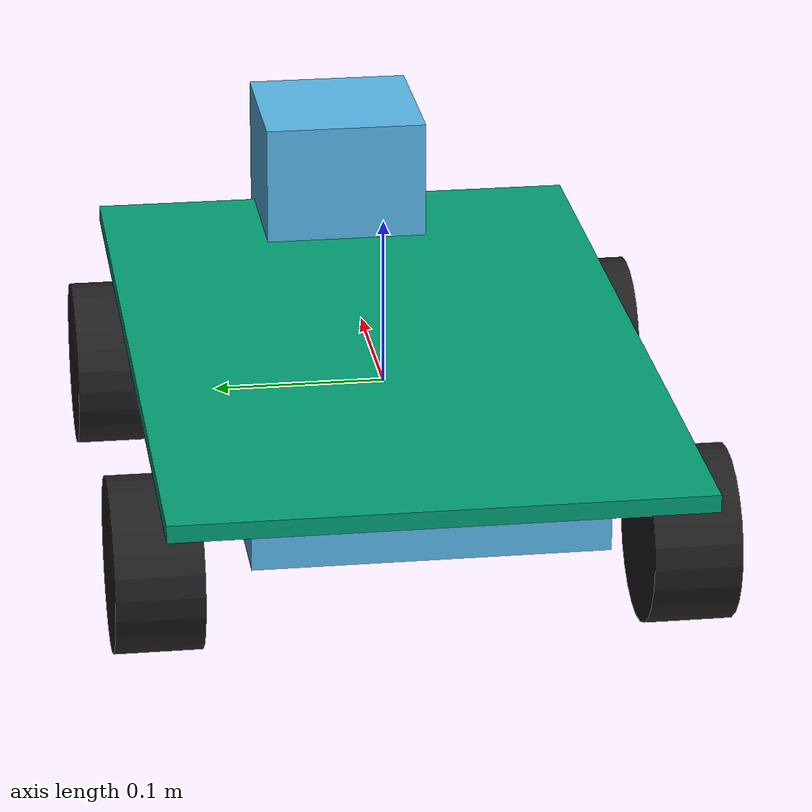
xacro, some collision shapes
<?xml version='1.0'?>

<robot name="slam_bot" xmlns:xacro="http://www.ros.org/wiki/xacro">
<xacro:include filename="$(find RoboND-SLAM-Project)/urdf/slam_bot.gazebo" />
  <link name="robot_footprint"></link>

  <joint name="robot_footprint_joint" type="fixed">
    <origin xyz="0 0 0" rpy="0 0 0" />
    <parent link="robot_footprint"/>
    <child link="chassis" />
  </joint>

  <link name='chassis'>
    <pose>0 0 0.1 0 0 0</pose>

    <inertial>
      <mass value="15.0"/>
      <origin xyz="0.0 0 0" rpy=" 0 0 0"/>
      <inertia ixx="0.1" ixy="0" ixz="0" iyy="0.1" iyz="0" izz="0.1" />
    </inertial>

    <collision name='collision'>
      <origin xyz="0 0 0" rpy=" 0 0 0"/>
      <geometry>
        <box size=".4 .2 .05"/>
      </geometry>
    </collision>

    <visual>
      <origin xyz="0 0 0" rpy=" 0 0 0"/>
      <geometry>
        <box size=".4 .2 .05"/>
      </geometry>
    </visual>

  </link>

  <link name='FlatBed'>

    <inertial>
      <mass value="5.0"/>
      <origin xyz="0.0 0 0" rpy=" 0 0 0"/>
      <inertia ixx="0.1" ixy="0" ixz="0" iyy="0.1" iyz="0" izz="0.1"/>
    </inertial>

    <collision name='FlatBed_collision'>
      <origin xyz="0 0 0" rpy=" 0 0 0"/>
      <geometry>
        <box size=".5 .3 .01"/>
      </geometry>
    </collision>

    <visual>
      <origin xyz="0 0 0" rpy=" 0 0 0"/>
      <geometry>
        <box size=".5 .3 .01"/>
      </geometry>
    </visual>

  </link>

  <joint type="fixed" name="flatbed_joint">
    <origin xyz="0 0 0.022" rpy="0 0 0"/>
    <child link="FlatBed"/>
    <parent link="chassis"/>
  </joint>

  <link name='Left_front_wheel'>

    <inertial>
      <mass value="5.0"/>
      <origin xyz="0 0 0" rpy="0 0 0"/>
      <inertia ixx="0.1" ixy="0" ixz="0" iyy="0.1" iyz="0" izz="0.1"/>
    </inertial>

    <collision name='collision'>
      <origin xyz="0 0 0" rpy="0 1.5707 1.5707"/>
      <geometry>
        <cylinder length="0.05" radius="0.05"/>
      </geometry>
    </collision>

    <visual>
      <origin xyz="0 0 0" rpy="0 1.5707 1.5707"/>
      <geometry>
        <cylinder length="0.05" radius="0.05"/>
      </geometry>
    </visual>

  </link>

  <joint type="continuous" name="left_front_wheel_hinge">
    <origin xyz="0.15 0.15 -0.04" rpy="0 0 0"/>
    <child link="Left_front_wheel"/>
    <parent link="chassis"/>
    <axis xyz="0 1 0" rpy="0 0 0"/>
    <limit effort="10000" velocity="1000"/>
    <joint_properties damping="1.0" friction="0.02"/>
  </joint>

  <link name='Left_back_wheel'>

    <inertial>
      <mass value="5.0"/>
      <origin xyz="0 0 0" rpy="0 0 0"/>
      <inertia ixx="0.1" ixy="0" ixz="0" iyy="0.1" iyz="0" izz="0.1"/>
    </inertial>

    <collision name='collision'>
      <origin xyz="0 0 0" rpy="0 1.5707 1.5707"/>
      <geometry>
        <cylinder length="0.05" radius="0.05"/>
      </geometry>
    </collision>

    <visual>
      <origin xyz="0 0 0" rpy="0 1.5707 1.5707"/>
      <geometry>
        <cylinder length="0.05" radius="0.05"/>
      </geometry>
    </visual>

  </link>

  <joint type="continuous" name="left_back_wheel_hinge">
    <origin xyz="-0.15 0.15 -0.04" rpy="0 0 0"/>
    <child link="Left_back_wheel"/>
    <parent link="chassis"/>
    <axis xyz="0 1 0" rpy="0 0 0"/>
    <limit effort="10000" velocity="1000"/>
    <joint_properties damping="1.0" friction="0.02"/>
  </joint>

  <link name='Right_front_wheel'>

    <inertial>
      <mass value="5.0"/>
      <origin xyz="0 0 0" rpy="0 0 0"/>
      <inertia ixx="0.1" ixy="0" ixz="0" iyy="0.1" iyz="0" izz="0.1"/>
    </inertial>

    <collision name='collision'>
      <origin xyz="0 0 0" rpy=" 0 1.5707 1.5707"/>
      <geometry>
        <cylinder length="0.05" radius="0.05"/>
      </geometry>
    </collision>

    <visual>
      <origin xyz="0 0 0" rpy=" 0 1.5707 1.5707"/>
      <geometry>
        <cylinder length="0.05" radius="0.05"/>
      </geometry>
    </visual>

  </link>

  <joint type="continuous" name="right_front_wheel_hinge">
    <origin xyz="0.15 -0.15 -0.04" rpy="0 0 0"/>
    <child link="Right_front_wheel"/>
    <parent link="chassis"/>
    <axis xyz="0 1 0" rpy="0 0 0"/>
    <limit effort="10000" velocity="1000"/>
    <joint_properties damping="1.0" friction="0.02"/>
  </joint>

  <link name='Right_back_wheel'>

    <inertial>
      <mass value="5.0"/>
      <origin xyz="0 0 0" rpy="0 0 0"/>
      <inertia ixx="0.1" ixy="0" ixz="0" iyy="0.1" iyz="0" izz="0.1"/>
    </inertial>

    <collision name='collision'>
      <origin xyz="0 0 0" rpy=" 0 1.5707 1.5707"/>
      <geometry>
        <cylinder length="0.05" radius="0.05"/>
      </geometry>
    </collision>

    <visual>
      <origin xyz="0 0 0" rpy=" 0 1.5707 1.5707"/>
      <geometry>
        <cylinder length="0.05" radius="0.05"/>
      </geometry>
    </visual>

  </link>

  <joint type="continuous" name="right_back_wheel_hinge">
    <origin xyz="-0.15 -0.15 -0.04" rpy="0 0 0"/>
    <child link="Right_back_wheel"/>
    <parent link="chassis"/>
    <axis xyz="0 1 0" rpy="0 0 0"/>
    <limit effort="10000" velocity="1000"/>
    <joint_properties damping="1.0" friction="0.02"/>
  </joint>

  <link name='camera'>

    <inertial>
      <mass value="0.1"/>
      <origin xyz="0 0 0" rpy="0 0 0"/>
      <inertia ixx="1e-6" ixy="0" ixz="0" iyy="1e-6" iyz="0" izz="1e-6"/>
    </inertial>

    <collision name='collision'>
      <origin xyz="0 0 0" rpy=" 0 0 0"/>
      <geometry>
        <box size=".05 .05 .04"/>
      </geometry>
    </collision>

    <visual name='camera_visual'>
      <origin xyz="0 0 0" rpy=" 0 0 0"/>
      <geometry>
      	<mesh filename="package://RoboND-SLAM-Project/meshes/kinect.dae"/>
      </geometry>
    </visual>

  </link>

  <joint type="fixed" name="camera_joint">
    <origin xyz="0.25 0 -0.005" rpy="0 0 0"/>
    <child link="camera"/>
    <parent link="chassis"/>
  </joint>

  <link name="camera_rgbd_frame"> </link>

  <joint name="camera_rgbd_joint" type="fixed">
    <!-- these values have to be these values otherwise the gazebo camera
        image won't be aligned properly with the frame it is supposedly
        originating from -->
    <origin xyz="0 0 0" rpy="${-pi/2} 0 ${-pi/2}"/>
    <child link="camera_rgbd_frame"/>
    <parent link="camera"/>
  </joint>

  <link name='hokuyo'>

    <inertial>
      <mass value="0.1"/>
      <origin xyz="0.0 0 0" rpy="0 0 0"/>
      <inertia ixx="1e-6" ixy="0" ixz="0" iyy="1e-6" iyz="0" izz="1e-6"/>
    </inertial>

    <collision name='collision'>
      <origin xyz="0 0 0" rpy=" 0 0 0"/>
      <geometry>
        <box size="0.1 0.1 0.1"/>
      </geometry>
    </collision>

    <visual name='laser_visual'>
      <origin xyz="0 0 0" rpy=" 0 0 0"/>
      <geometry>
        <mesh filename="package://RoboND-SLAM-Project/meshes/hokuyo.dae"/>
      </geometry>
    </visual>

  </link>

  <joint type="fixed" name="hokuyo_joint">
    <origin xyz="0.22 0 0.05" rpy="0 0 0"/>
    <child link="hokuyo"/>
    <parent link="chassis"/>
  </joint>

</robot>
